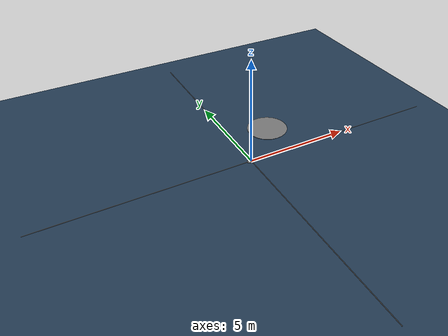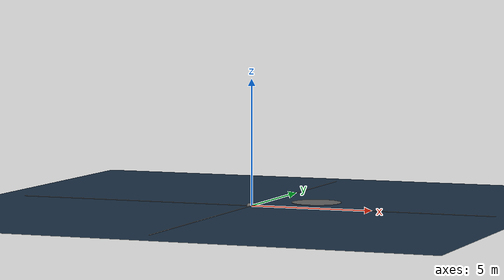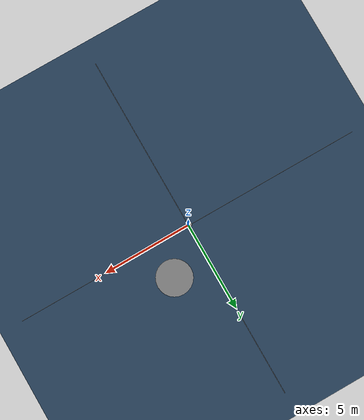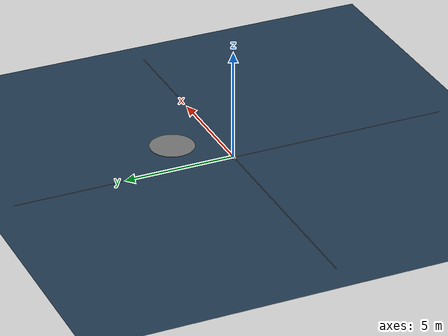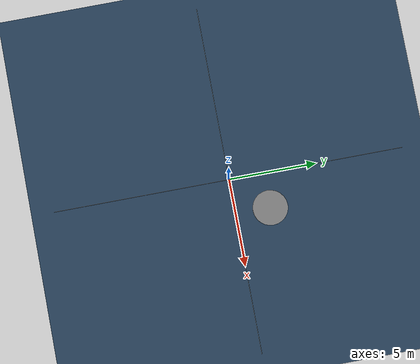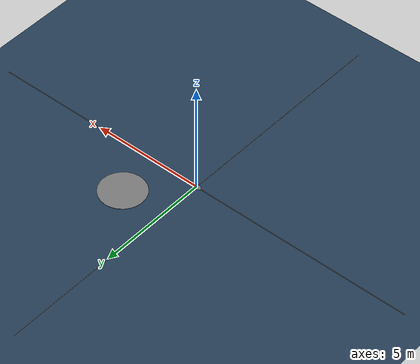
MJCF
<mujoco model="foraging scene">
    <include file="double_integrator.xml"/>

    <statistic center="0 0 0.1" extent="0.8"/>

    <visual>
      <headlight diffuse="0.6 0.6 0.6" ambient="0.3 0.3 0.3" specular="0 0 0"/>
      <rgba haze="0.15 0.25 0.35 1"/>
      <global azimuth="120" elevation="-20"/>
    </visual>

    <asset>
      <texture type="skybox" builtin="gradient" rgb1="0.3 0.5 0.7" rgb2="0 0 0" width="512" height="3072"/>
      <texture type="2d" name="groundplane" builtin="checker" mark="edge" rgb1="0.2 0.3 0.4" rgb2="0.1 0.2 0.3"
        markrgb="0.8 0.8 0.8" width="300" height="300"/>
      <material name="groundplane" texture="groundplane" texuniform="true" texrepeat="5 5" reflectance="0.2"/>
    </asset>

    <worldbody>
      <light pos="0 0 1.5" dir="0 0 -1" directional="true"/>
      <camera name="default" pos="0.846 -1.465 0.916" xyaxes="0.866 0.500 0.000 -0.171 0.296 0.940"/>
      <geom name="floor" size="0 0 0.05" type="plane" material="groundplane"/>
      <geom name="foraging_target" pos="2 2 0" size="1.0 0.01" type="cylinder"/>
      <geom name="x_axis" pos="0 0 0" size="10.0 0.01 0.01" type="box"/>
      <geom name="y_axis" pos="0 0 0" size="0.01 10.0 0.01" type="box"/>
    </worldbody>

  </mujoco>

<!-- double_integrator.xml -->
<mujoco model="double integrator">
    <compiler inertiafromgeom="true"/>

    <option iterations="1" ls_iterations="5">
        <flag eulerdamp="disable"/>
    </option>

    <default>
        <joint armature="0" damping="1"/>
        <geom contype="0" conaffinity="0" friction="1 0.1 0.1"/>
    </default>

    <worldbody>
        <light diffuse=".5 .5 .5" pos="0 0 3" dir="0 0 -1"/>
        <body name="body" pos="0 0 0">
            <joint name="x_slider" type="slide" axis="1 0 0" pos="0 0 0"/>
            <joint name="y_slider" type="slide" axis="0 1 0" pos="0 0 0"/>
            <geom name="body_geom" pos="0 0 0" quat="1 0 1 0" size="0.1 0.1" type="capsule"/>
        </body>
    </worldbody>

    <actuator>
        <motor ctrllimited="true" ctrlrange="-3 3" gear="100" joint="x_slider" name="x_motor"/>
        <motor ctrllimited="true" ctrlrange="-3 3" gear="100" joint="y_slider" name="y_motor"/>
    </actuator>

</mujoco>
